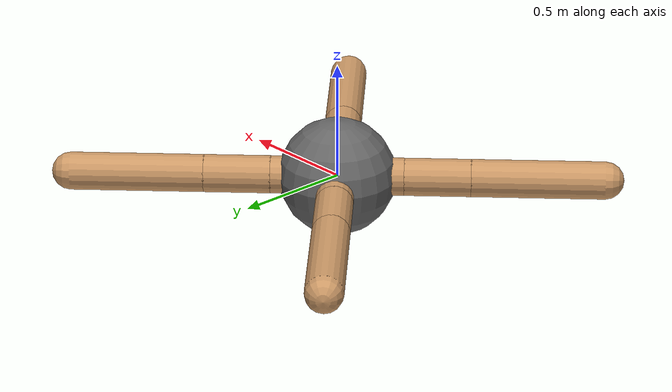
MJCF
<!--Adapted from: https://github.com/Farama-Foundation/Gymnasium/blob/main/gymnasium/envs/mujoco/assets/ant.xml-->

<mujoco model="ant">
  <compiler angle="degree" coordinate="local" inertiafromgeom="true"/>

  <option integrator="RK4" timestep="0.01"/>

  <default>
    <joint armature="1" damping="1" limited="true"/>
    <geom condim="3" density="5.0" friction="1 0.5 0.5" margin="0.01" material="yellow"/>
  </default>

  <asset>
    <material name="team" rgba="0.4 0.4 0.4 1"/>
    <material name="yellow" rgba="0.8 0.6 0.4 1"/>
  </asset>

  <worldbody>
    <body name="torso" pos="0 0 0">
      <site name="torso" pos="0 0 0"/>
      <site name="torso-vismarker" pos="0 0 0"/>
      <site name="camera" pos="0.2 0 0.1"/>
      <camera name="track" mode="trackcom" pos="0 -3 0.3" xyaxes="1 0 0 0 0 1"/>
      <geom name="torso_geom" pos="0 0 0" size="0.25" type="sphere" material="team"/>
      <joint armature="0" damping="0" limited="false" margin="0.01" name="root" pos="0 0 0" type="free"/>
      <body name="front_left_leg" pos="0 0 0">
        <geom fromto="0.0 0.0 0.0 0.2 0.2 0.0" name="aux_1_geom" size="0.08" type="capsule"/>
        <body name="aux_1" pos="0.2 0.2 0">
          <joint axis="0 0 1" name="hip_1" pos="0.0 0.0 0.0" range="-30 30" type="hinge"/>
          <geom fromto="0.0 0.0 0.0 0.2 0.2 0.0" name="left_leg_geom" size="0.08" type="capsule"/>
          <body pos="0.2 0.2 0">
            <joint axis="-1 1 0" name="ankle_1" pos="0.0 0.0 0.0" range="30 70" type="hinge"/>
            <geom fromto="0.0 0.0 0.0 0.4 0.4 0.0" name="left_ankle_geom" size="0.08" type="capsule"/>
          </body>
        </body>
      </body>
      <body name="front_right_leg" pos="0 0 0">
        <geom fromto="0.0 0.0 0.0 -0.2 0.2 0.0" name="aux_2_geom" size="0.08" type="capsule"/>
        <body name="aux_2" pos="-0.2 0.2 0">
          <joint axis="0 0 1" name="hip_2" pos="0.0 0.0 0.0" range="-30 30" type="hinge"/>
          <geom fromto="0.0 0.0 0.0 -0.2 0.2 0.0" name="right_leg_geom" size="0.08" type="capsule"/>
          <body pos="-0.2 0.2 0">
            <joint axis="1 1 0" name="ankle_2" pos="0.0 0.0 0.0" range="-70 -30" type="hinge"/>
            <geom fromto="0.0 0.0 0.0 -0.4 0.4 0.0" name="right_ankle_geom" size="0.08" type="capsule"/>
          </body>
        </body>
      </body>
      <body name="back_leg" pos="0 0 0">
        <geom fromto="0.0 0.0 0.0 -0.2 -0.2 0.0" name="aux_3_geom" size="0.08" type="capsule"/>
        <body name="aux_3" pos="-0.2 -0.2 0">
          <joint axis="0 0 1" name="hip_3" pos="0.0 0.0 0.0" range="-30 30" type="hinge"/>
          <geom fromto="0.0 0.0 0.0 -0.2 -0.2 0.0" name="back_leg_geom" size="0.08" type="capsule"/>
          <body pos="-0.2 -0.2 0">
            <joint axis="-1 1 0" name="ankle_3" pos="0.0 0.0 0.0" range="-70 -30" type="hinge"/>
            <geom fromto="0.0 0.0 0.0 -0.4 -0.4 0.0" name="third_ankle_geom" size="0.08" type="capsule"/>
          </body>
        </body>
      </body>
      <body name="right_back_leg" pos="0 0 0">
        <geom fromto="0.0 0.0 0.0 0.2 -0.2 0.0" name="aux_4_geom" size="0.08" type="capsule"/>
        <body name="aux_4" pos="0.2 -0.2 0">
          <joint axis="0 0 1" name="hip_4" pos="0.0 0.0 0.0" range="-30 30" type="hinge"/>
          <geom fromto="0.0 0.0 0.0 0.2 -0.2 0.0" name="rightback_leg_geom" size="0.08" type="capsule"/>
          <body pos="0.2 -0.2 0">
            <joint axis="1 1 0" name="ankle_4" pos="0.0 0.0 0.0" range="30 70" type="hinge"/>
            <geom fromto="0.0 0.0 0.0 0.4 -0.4 0.0" name="fourth_ankle_geom" size="0.08" type="capsule"/>
          </body>
        </body>
      </body>
    </body>
  </worldbody>

  <actuator>
    <motor name="l4e1_tau" joint="hip_4" gear="150" ctrllimited="true" ctrlrange="-1.0 1.0"/>
    <position name="l4e1_pos" joint="hip_4" gear="150" forcelimited="true" forcerange="-1.0 1.0"/>
    <velocity name="l4e1_vel" joint="hip_4" gear="150" forcelimited="true" forcerange="-1.0 1.0"/>

    <motor name="l4e2_tau" joint="ankle_4" gear="150" ctrllimited="true" ctrlrange="-1.0 1.0"/>
    <position name="l4e2_pos" joint="ankle_4" gear="150" forcelimited="true" forcerange="-1.0 1.0"/>
    <velocity name="l4e2_vel" joint="ankle_4" gear="150" forcelimited="true" forcerange="-1.0 1.0"/>

    <motor name="l1e1_tau" joint="hip_1" gear="150" ctrllimited="true" ctrlrange="-1.0 1.0"/>
    <position name="l1e1_pos" joint="hip_1" gear="150" forcelimited="true" forcerange="-1.0 1.0"/>
    <velocity name="l1e1_vel" joint="hip_1" gear="150" forcelimited="true" forcerange="-1.0 1.0"/>

    <motor name="l1e2_tau" joint="ankle_1" gear="150" ctrllimited="true" ctrlrange="-1.0 1.0"/>
    <position name="l1e2_pos" joint="ankle_1" gear="150" forcelimited="true" forcerange="-1.0 1.0"/>
    <velocity name="l1e2_vel" joint="ankle_1" gear="150" forcelimited="true" forcerange="-1.0 1.0"/>

    <motor name="l2e1_tau" joint="hip_2" gear="150" ctrllimited="true" ctrlrange="-1.0 1.0"/>
    <position name="l2e1_pos" joint="hip_2" gear="150" forcelimited="true" forcerange="-1.0 1.0"/>
    <velocity name="l2e1_vel" joint="hip_2" gear="150" forcelimited="true" forcerange="-1.0 1.0"/>

    <motor name="l2e2_tau" joint="ankle_2" gear="150" ctrllimited="true" ctrlrange="-1.0 1.0"/>
    <position name="l2e2_pos" joint="ankle_2" gear="150" forcelimited="true" forcerange="-1.0 1.0"/>
    <velocity name="l2e2_vel" joint="ankle_2" gear="150" forcelimited="true" forcerange="-1.0 1.0"/>

    <motor name="l3e1_tau" joint="hip_3" gear="150" ctrllimited="true" ctrlrange="-1.0 1.0"/>
    <position name="l3e1_pos" joint="hip_3" gear="150" forcelimited="true" forcerange="-1.0 1.0"/>
    <velocity name="l3e1_vel" joint="hip_3" gear="150" forcelimited="true" forcerange="-1.0 1.0"/>

    <motor name="l3e2_tau" joint="ankle_3" gear="150" ctrllimited="true" ctrlrange="-1.0 1.0"/>
    <position name="l3e2_pos" joint="ankle_3" gear="150" forcelimited="true" forcerange="-1.0 1.0"/>
    <velocity name="l3e2_vel" joint="ankle_3" gear="150" forcelimited="true" forcerange="-1.0 1.0"/>
  </actuator>

  <sensor>
    <framequat name="torso_quat" objtype="site" objname="torso"/><!-- Used for ground-truth perception of robot orientation.-->
    <framepos name="torso_pos" objtype="site" objname="torso"/><!-- Used for ground-truth perception of robot position.-->

    <gyro name="torso_gyro" site="torso"/>
    <accelerometer name="torso_acc" site="torso"/>
    <jointpos name="q_l4j1" joint="hip_4"/>
    <jointpos name="q_l4j2" joint="ankle_4"/>
    <jointpos name="q_l1j1" joint="hip_1"/>
    <jointpos name="q_l1j2" joint="ankle_1"/>
    <jointpos name="q_l2j1" joint="hip_2"/>
    <jointpos name="q_l2j2" joint="ankle_2"/>
    <jointpos name="q_l3j1" joint="hip_3"/>
    <jointpos name="q_l3j2" joint="ankle_3"/>
    <jointvel name="dq_l4j1" joint="hip_4"/>
    <jointvel name="dq_l4j2" joint="ankle_4"/>
    <jointvel name="dq_l1j1" joint="hip_1"/>
    <jointvel name="dq_l1j2" joint="ankle_1"/>
    <jointvel name="dq_l2j1" joint="hip_2"/>
    <jointvel name="dq_l2j2" joint="ankle_2"/>
    <jointvel name="dq_l3j1" joint="hip_3"/>
    <jointvel name="dq_l3j2" joint="ankle_3"/>
  </sensor>
</mujoco>
